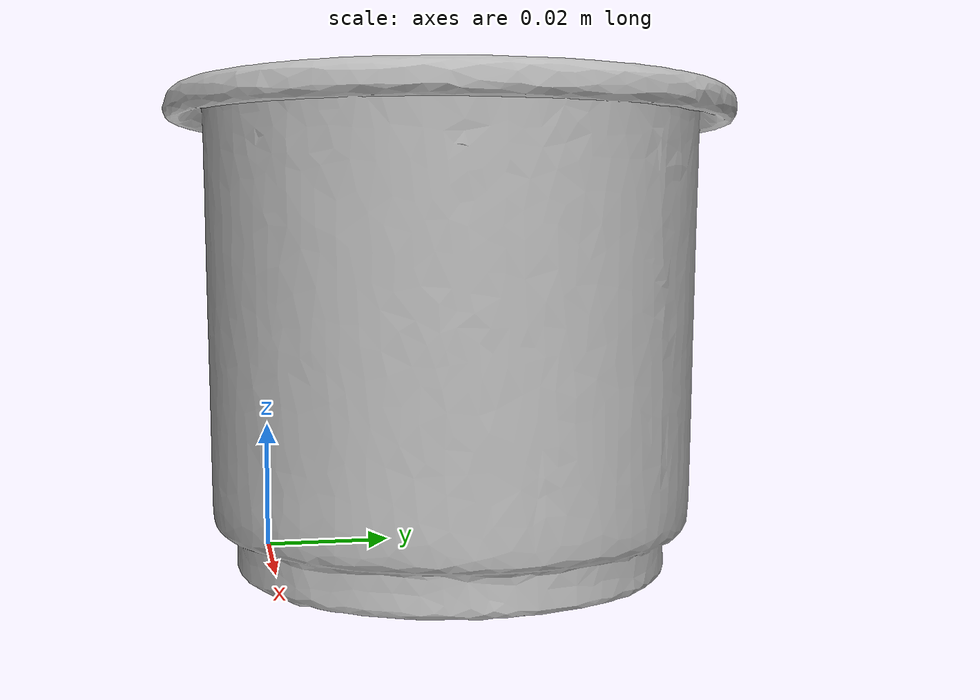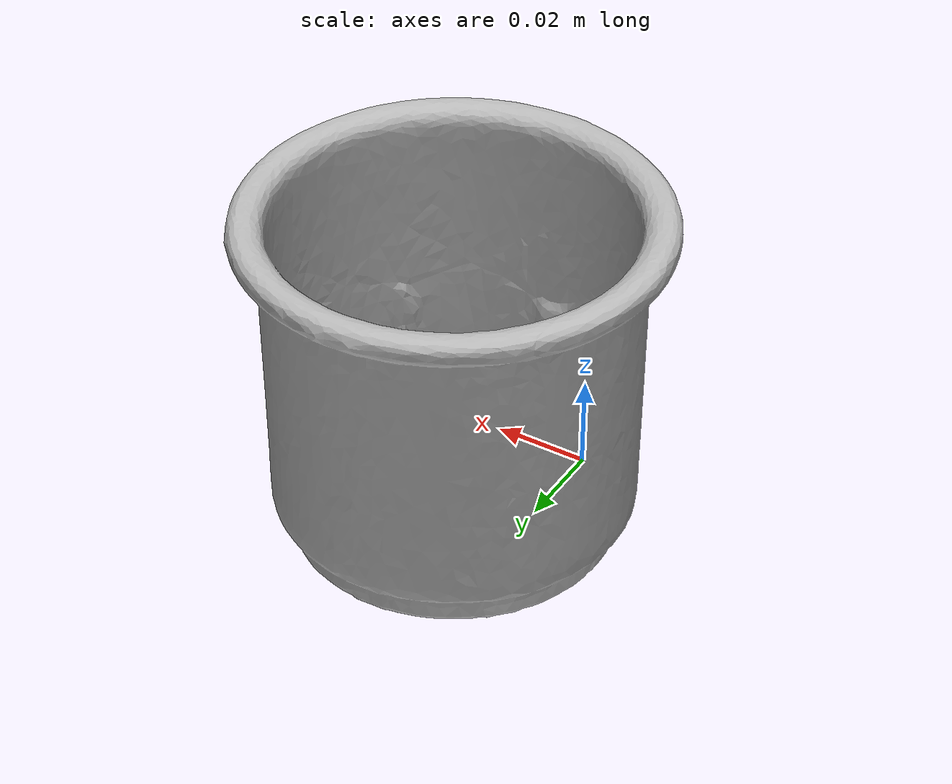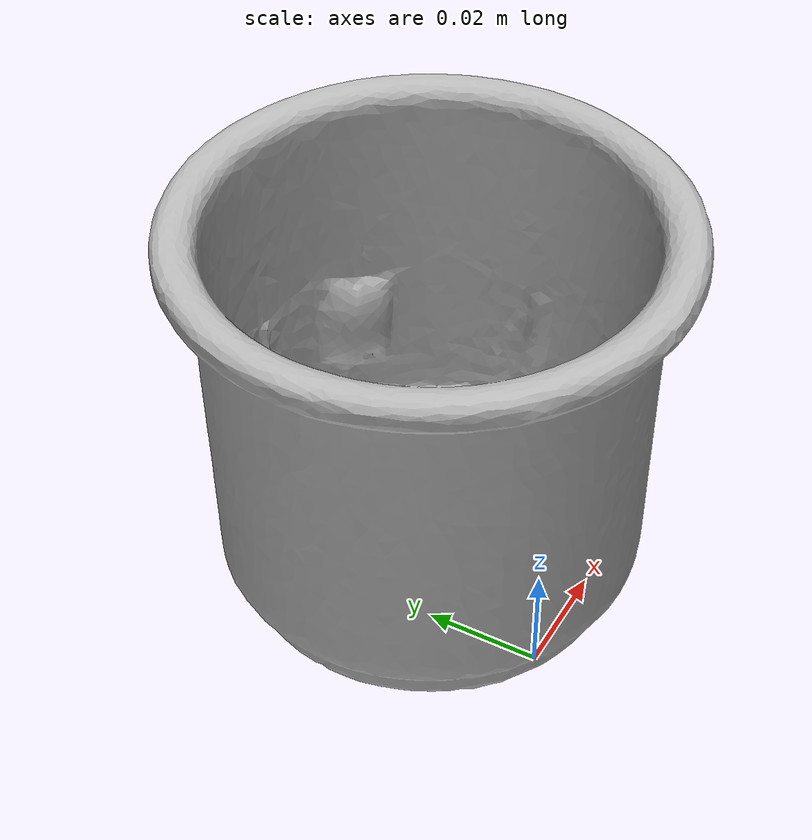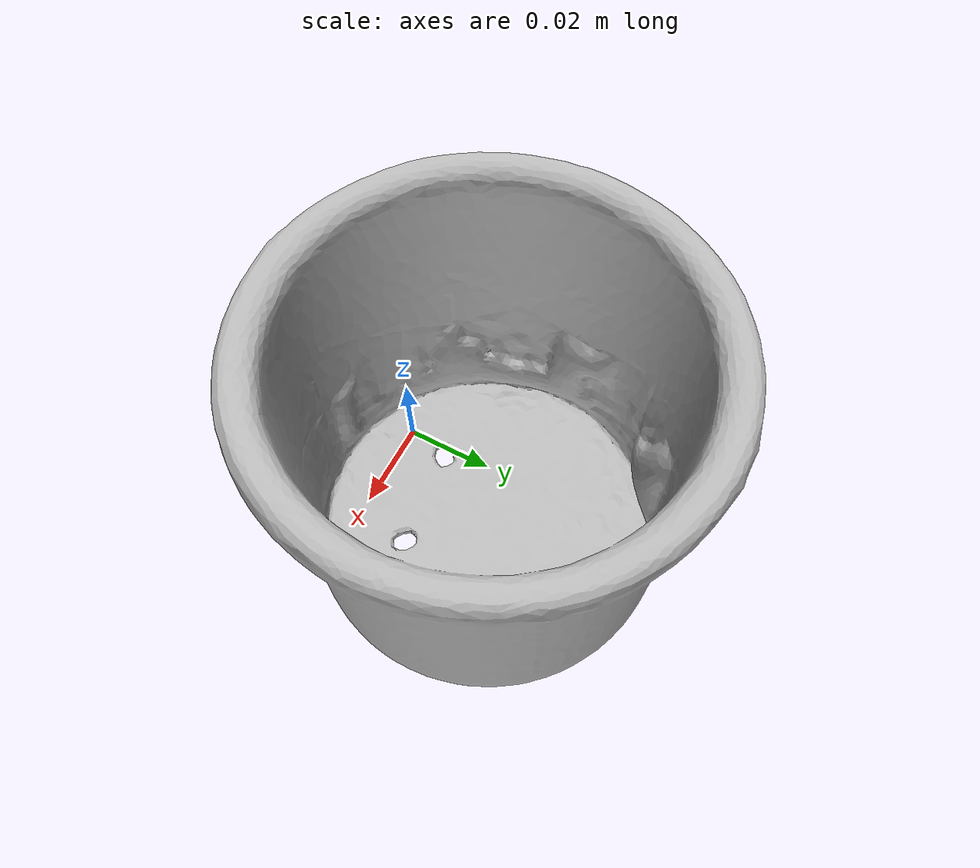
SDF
<?xml version='1.0'?>
<sdf version="1.4">
  <model name="g_cups">
    <static>false</static>
    <link name="link">
      <inertial>
        <pose>0.012934602057724176 0.028094809623552288 0.03487435287003049 -2.6148162660284107 -1.2688604946737516 2.8469785263354184</pose>
        <mass>4.526128588154451e-05</mass>
        <inertia>
          <ixx>5.650425124689807e-08</ixx>
          <ixy>7.46347581003062e-24</ixy>
          <ixz>-1.2010818884213424e-23</ixz>
          <iyy>5.3162470017881243e-08</iyy>
          <iyz>-9.295693856138225e-24</iyz>
          <izz>5.2382244079594347e-08</izz>
        </inertia>
      </inertial>
      <collision name="collision">
        <geometry>
          <mesh>
            <!-- Use a downsampled mesh for collisions -->
            <uri>model://065-g_cups/google_16k/065-g_cups.obj</uri>
            </mesh>
        </geometry>
        <surface>
          <friction>
            <ode>
              <mu>0.9</mu>
              <mu2>0.9</mu2>
            </ode>
          </friction>
          <contact>
            <ode>
              <kp>1000000000000.0</kp>
              <kd>1</kd>
              <min_depth>0.0001</min_depth>
              <max_vel>0.01</max_vel>
            </ode>
          </contact>
          <bounce>
            <restitution_coefficient>0.1</restitution_coefficient>
            <threshold>1000.0</threshold>
          </bounce>
        </surface>
      </collision>
      <visual name="visual">
        <geometry>
          <mesh>
            <uri>model://065-g_cups/google_16k/065-g_cups.dae</uri>
            </mesh>
        </geometry>
      </visual>
    </link>
  </model>
</sdf>
